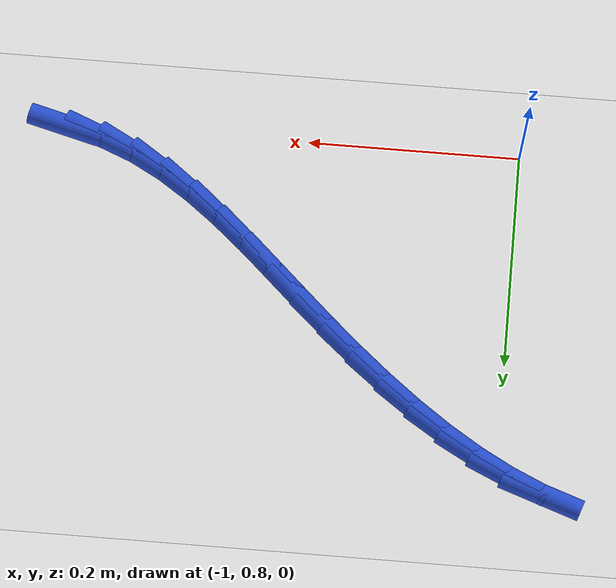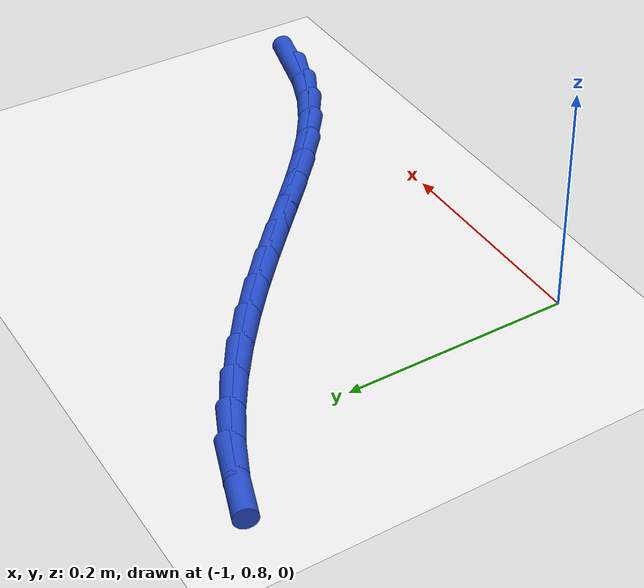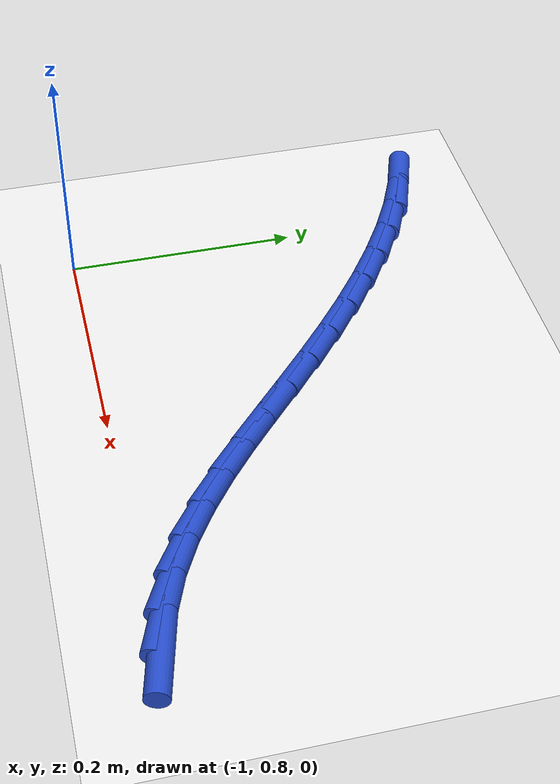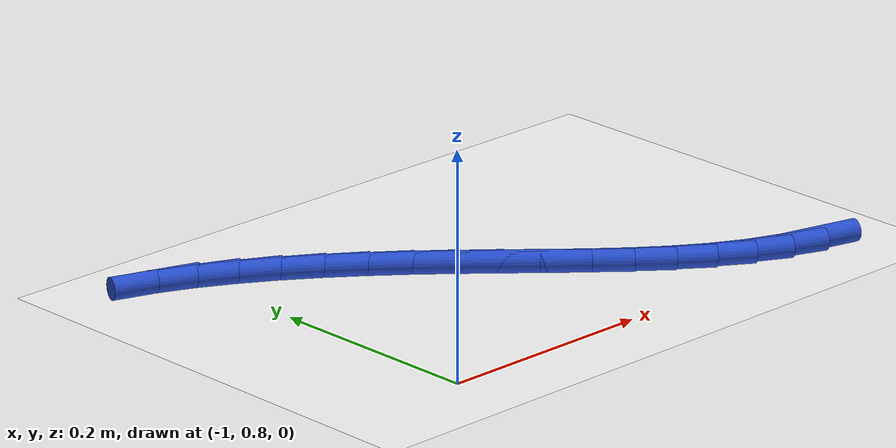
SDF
<sdf version="1.6">
 <world name="default">
  <model name="ground_plane">
   <static>1</static>
   <link name="link">
    <collision name="collision">
     <geometry><plane><normal>0 0 1</normal><size>100 100</size></plane></geometry>
     <surface><friction><ode><mu>100</mu><mu2>50</mu2></ode></friction></surface>
    </collision>
    <visual name="visual">
     <cast_shadows>0</cast_shadows>
     <geometry><plane><normal>0 0 1</normal><size>100 100</size></plane></geometry>
     <material>
      <script><uri>file://media/materials/scripts/gazebo.material</uri><name>Gazebo/WhiteGlow</name></script>
     </material>
    </visual>
   </link>
  </model>
  <model name="line">
   <link name="link_31">
    <pose>-0.574041923240744 0.8040948453043358 0.01 0 1.57 -0.2477213466140488</pose>
    <collision name="collision">
     <geometry><cylinder><radius>0.01</radius><length>0.08</length></cylinder></geometry>
    </collision>
    <visual name="visual">
     <material>
      <script><name>Gazebo/Blue</name><uri>file://media/materials/scripts/gazebo.material</uri></script>
     </material>
     <geometry><cylinder><radius>0.01</radius><length>0.08</length></cylinder></geometry>
    </visual>
   </link>
   <link name="link_32">
    <pose>-0.6067117567632987 0.8123575724481106 0.01 0 1.57 -0.37602174688956047</pose>
    <collision name="collision">
     <geometry><cylinder><radius>0.01</radius><length>0.08</length></cylinder></geometry>
    </collision>
    <visual name="visual">
     <material>
      <script><name>Gazebo/Blue</name><uri>file://media/materials/scripts/gazebo.material</uri></script>
     </material>
     <geometry><cylinder><radius>0.01</radius><length>0.08</length></cylinder></geometry>
    </visual>
   </link>
   <link name="link_33">
    <pose>-0.6376430923885111 0.8245694836563725 0.01 0 1.57 -0.4895912701656224</pose>
    <collision name="collision">
     <geometry><cylinder><radius>0.01</radius><length>0.08</length></cylinder></geometry>
    </collision>
    <visual name="visual">
     <material>
      <script><name>Gazebo/Blue</name><uri>file://media/materials/scripts/gazebo.material</uri></script>
     </material>
     <geometry><cylinder><radius>0.01</radius><length>0.08</length></cylinder></geometry>
    </visual>
   </link>
   <link name="link_34">
    <pose>-0.6671123479816877 0.8402725668601148 0.01 0 1.57 -0.5820176094985772</pose>
    <collision name="collision">
     <geometry><cylinder><radius>0.01</radius><length>0.08</length></cylinder></geometry>
    </collision>
    <visual name="visual">
     <material>
      <script><name>Gazebo/Blue</name><uri>file://media/materials/scripts/gazebo.material</uri></script>
     </material>
     <geometry><cylinder><radius>0.01</radius><length>0.08</length></cylinder></geometry>
    </visual>
   </link>
   <link name="link_35">
    <pose>-0.6954410792702869 0.8589144564529277 0.01 0 1.57 -0.6526505553294145</pose>
    <collision name="collision">
     <geometry><cylinder><radius>0.01</radius><length>0.08</length></cylinder></geometry>
    </collision>
    <visual name="visual">
     <material>
      <script><name>Gazebo/Blue</name><uri>file://media/materials/scripts/gazebo.material</uri></script>
     </material>
     <geometry><cylinder><radius>0.01</radius><length>0.08</length></cylinder></geometry>
    </visual>
   </link>
   <link name="link_36">
    <pose>-0.7229508419817668 0.8799427868284014 0.01 0 1.57 -0.70238208552265</pose>
    <collision name="collision">
     <geometry><cylinder><radius>0.01</radius><length>0.08</length></cylinder></geometry>
    </collision>
    <visual name="visual">
     <material>
      <script><name>Gazebo/Blue</name><uri>file://media/materials/scripts/gazebo.material</uri></script>
     </material>
     <geometry><cylinder><radius>0.01</radius><length>0.08</length></cylinder></geometry>
    </visual>
   </link>
   <link name="link_37">
    <pose>-0.7499631918435862 0.9028051923801266 0.01 0 1.57 -0.7326353812267159</pose>
    <collision name="collision">
     <geometry><cylinder><radius>0.01</radius><length>0.08</length></cylinder></geometry>
    </collision>
    <visual name="visual">
     <material>
      <script><name>Gazebo/Blue</name><uri>file://media/materials/scripts/gazebo.material</uri></script>
     </material>
     <geometry><cylinder><radius>0.01</radius><length>0.08</length></cylinder></geometry>
    </visual>
   </link>
   <link name="link_38">
    <pose>-0.776799684583203 0.926949307501693 0.01 0 1.57 -0.744755128222772</pose>
    <collision name="collision">
     <geometry><cylinder><radius>0.01</radius><length>0.08</length></cylinder></geometry>
    </collision>
    <visual name="visual">
     <material>
      <script><name>Gazebo/Blue</name><uri>file://media/materials/scripts/gazebo.material</uri></script>
     </material>
     <geometry><cylinder><radius>0.01</radius><length>0.08</length></cylinder></geometry>
    </visual>
   </link>
   <link name="link_39">
    <pose>-0.8037818759280755 0.951822766586691 0.01 0 1.57 -0.7397344321750668</pose>
    <collision name="collision">
     <geometry><cylinder><radius>0.01</radius><length>0.08</length></cylinder></geometry>
    </collision>
    <visual name="visual">
     <material>
      <script><name>Gazebo/Blue</name><uri>file://media/materials/scripts/gazebo.material</uri></script>
     </material>
     <geometry><cylinder><radius>0.01</radius><length>0.08</length></cylinder></geometry>
    </visual>
   </link>
   <link name="link_40">
    <pose>-0.8312313216056625 0.9768732040287116 0.01 0 1.57 -0.7194864768363495</pose>
    <collision name="collision">
     <geometry><cylinder><radius>0.01</radius><length>0.08</length></cylinder></geometry>
    </collision>
    <visual name="visual">
     <material>
      <script><name>Gazebo/Blue</name><uri>file://media/materials/scripts/gazebo.material</uri></script>
     </material>
     <geometry><cylinder><radius>0.01</radius><length>0.08</length></cylinder></geometry>
    </visual>
   </link>
   <link name="link_41">
    <pose>-0.8594181808605208 1.001569395838576 0.01 0 1.57 -0.6905855351061072</pose>
    <collision name="collision">
     <geometry><cylinder><radius>0.01</radius><length>0.08</length></cylinder></geometry>
    </collision>
    <visual name="visual">
     <material>
      <script><name>Gazebo/Blue</name><uri>file://media/materials/scripts/gazebo.material</uri></script>
     </material>
     <geometry><cylinder><radius>0.01</radius><length>0.08</length></cylinder></geometry>
    </visual>
   </link>
   <link name="link_42">
    <pose>-0.8883595158805042 1.025484227895982 0.01 0 1.57 -0.6544674693889861</pose>
    <collision name="collision">
     <geometry><cylinder><radius>0.01</radius><length>0.08</length></cylinder></geometry>
    </collision>
    <visual name="visual">
     <material>
      <script><name>Gazebo/Blue</name><uri>file://media/materials/scripts/gazebo.material</uri></script>
     </material>
     <geometry><cylinder><radius>0.01</radius><length>0.08</length></cylinder></geometry>
    </visual>
   </link>
   <link name="link_43">
    <pose>-0.9179946134673654 1.048222578492366 0.01 0 1.57 -0.6102616828663859</pose>
    <collision name="collision">
     <geometry><cylinder><radius>0.01</radius><length>0.08</length></cylinder></geometry>
    </collision>
    <visual name="visual">
     <material>
      <script><name>Gazebo/Blue</name><uri>file://media/materials/scripts/gazebo.material</uri></script>
     </material>
     <geometry><cylinder><radius>0.01</radius><length>0.08</length></cylinder></geometry>
    </visual>
   </link>
   <link name="link_44">
    <pose>-0.9482627393894696 1.069389334571117 0.01 0 1.57 -0.5568436397219181</pose>
    <collision name="collision">
     <geometry><cylinder><radius>0.01</radius><length>0.08</length></cylinder></geometry>
    </collision>
    <visual name="visual">
     <material>
      <script><name>Gazebo/Blue</name><uri>file://media/materials/scripts/gazebo.material</uri></script>
     </material>
     <geometry><cylinder><radius>0.01</radius><length>0.08</length></cylinder></geometry>
    </visual>
   </link>
   <link name="link_45">
    <pose>-0.9791031594151814 1.088589383075623 0.01 0 1.57 -0.4928624767347544</pose>
    <collision name="collision">
     <geometry><cylinder><radius>0.01</radius><length>0.08</length></cylinder></geometry>
    </collision>
    <visual name="visual">
     <material>
      <script><name>Gazebo/Blue</name><uri>file://media/materials/scripts/gazebo.material</uri></script>
     </material>
     <geometry><cylinder><radius>0.01</radius><length>0.08</length></cylinder></geometry>
    </visual>
   </link>
   <link name="link_46">
    <pose>-1.0104551393128658 1.1054276109492724 0.01 0 1.57 -0.41682431916936086</pose>
    <collision name="collision">
     <geometry><cylinder><radius>0.01</radius><length>0.08</length></cylinder></geometry>
    </collision>
    <visual name="visual">
     <material>
      <script><name>Gazebo/Blue</name><uri>file://media/materials/scripts/gazebo.material</uri></script>
     </material>
     <geometry><cylinder><radius>0.01</radius><length>0.08</length></cylinder></geometry>
    </visual>
   </link>
   <link name="link_47">
    <pose>-1.0422579448508873 1.1195089051354539 0.01 0 1.57 -0.32728353474115207</pose>
    <collision name="collision">
     <geometry><cylinder><radius>0.01</radius><length>0.08</length></cylinder></geometry>
    </collision>
    <visual name="visual">
     <material>
      <script><name>Gazebo/Blue</name><uri>file://media/materials/scripts/gazebo.material</uri></script>
     </material>
     <geometry><cylinder><radius>0.01</radius><length>0.08</length></cylinder></geometry>
    </visual>
   </link>
  </model>
 </world>
</sdf>
